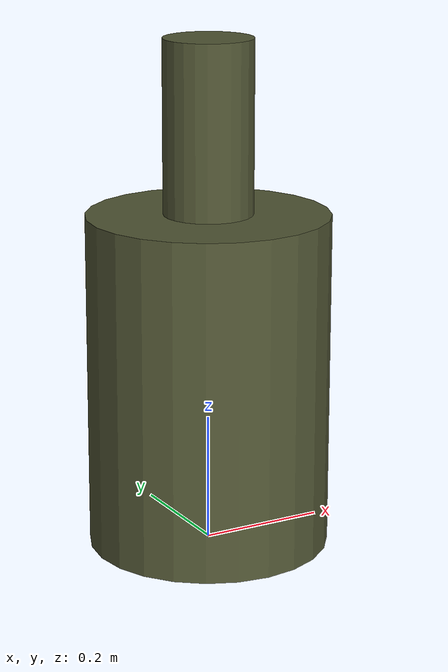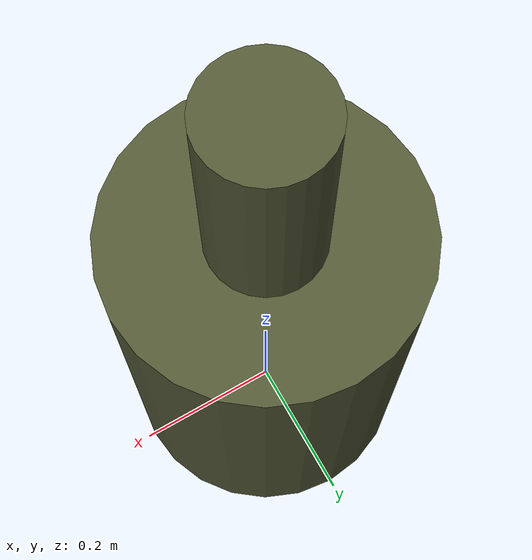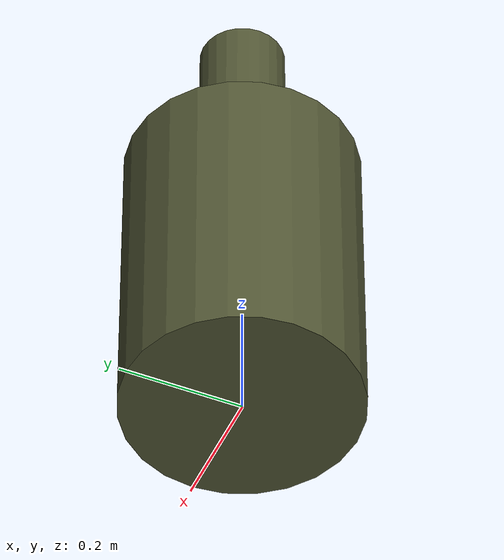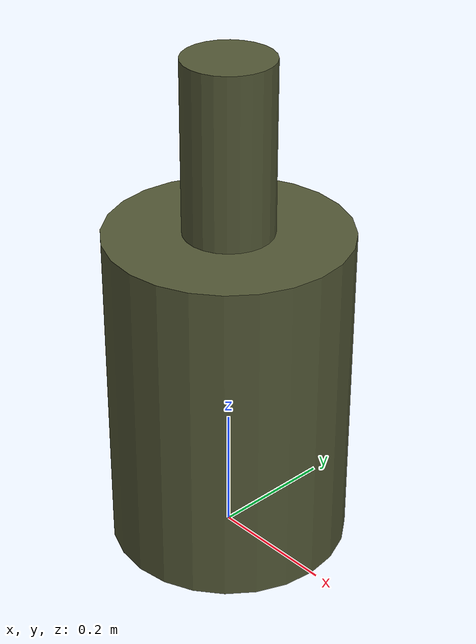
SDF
<?xml version='1.0'?>
<sdf version='1.7'>
  <model name='obstacle_iso18497'>
    <pose>0 0 0 0 0 0</pose>
    <static>false</static>

    <link name='link'>
      <visual name='body'>
        <pose>0 0 0.265 0 0 0</pose>
        <geometry>
          <cylinder>
            <radius>0.190</radius>
            <length>0.530</length>
          </cylinder>
        </geometry>
        <material>
          <ambient>0.322 0.341 0.208</ambient> <!-- Munsell 2.5GY 3.5/3 -->
          <diffuse>0.322 0.341 0.208</diffuse> <!-- Munsell 2.5GY 3.5/3 -->
        </material>
      </visual>

      <visual name='head'>
        <pose>0 0 0.665 0 0 0</pose>
        <geometry>
          <cylinder>
            <radius>0.070</radius>
            <length>0.270</length>
          </cylinder>
        </geometry>
        <material>
          <ambient>0.322 0.341 0.208</ambient> <!-- Munsell 2.5GY 3.5/3 -->
          <diffuse>0.322 0.341 0.208</diffuse> <!-- Munsell 2.5GY 3.5/3 -->
        </material>
      </visual>

      <collision name='body_col'>
        <pose>0 0 0.265 0 0 0</pose>
        <geometry>
          <cylinder>
            <radius>0.190</radius>
            <length>0.530</length>
          </cylinder>
        </geometry>
        <surface>
          <contact>
            <collide_without_contact>false</collide_without_contact>
          </contact>
        </surface>
      </collision>

      <collision name='head_col'>
        <pose>0 0 0.665 0 0 0</pose>
        <geometry>
          <cylinder>
            <radius>0.070</radius>
            <length>0.270</length>
          </cylinder>
        </geometry>
        <surface>
          <contact>
            <collide_without_contact>false</collide_without_contact>
          </contact>
        </surface>
      </collision>

      <inertial>
        <mass>40</mass>
      </inertial>
    </link>
  </model>
</sdf>
